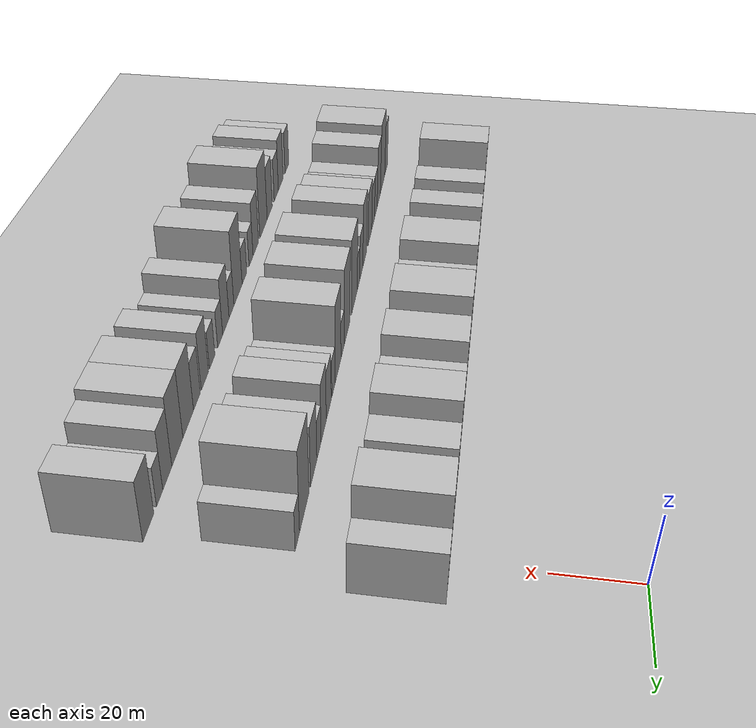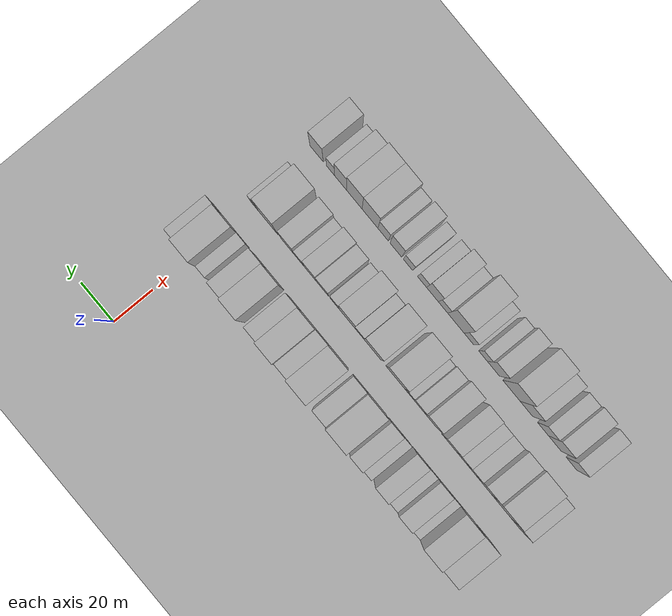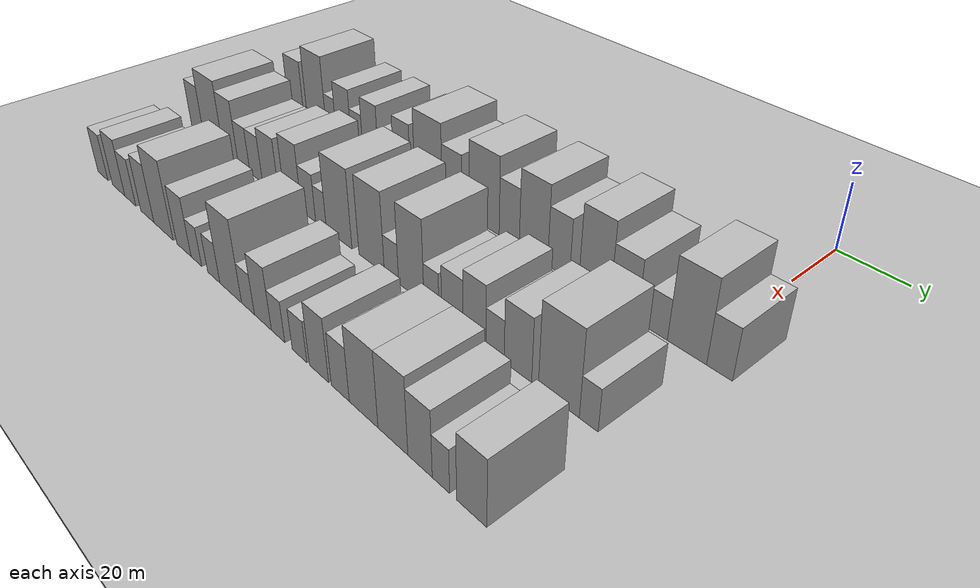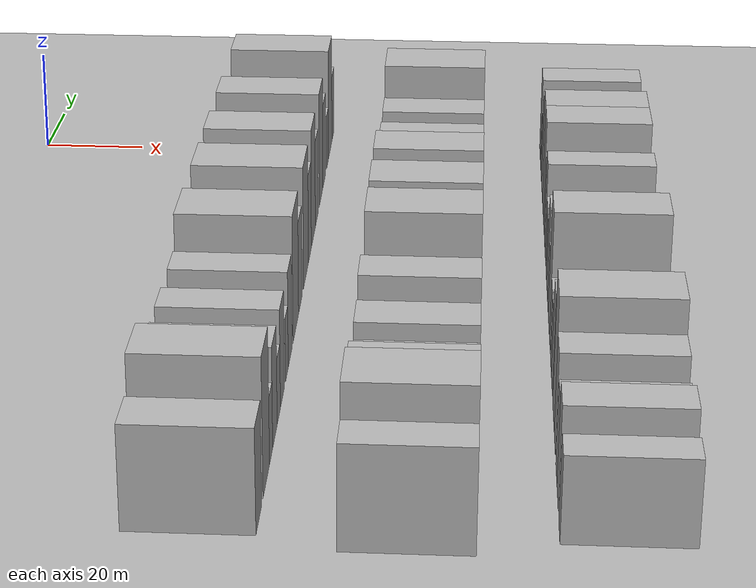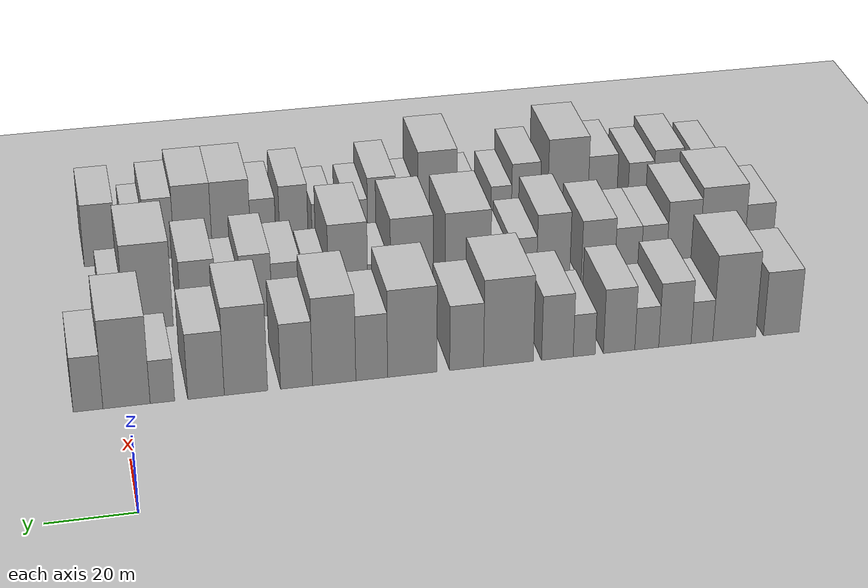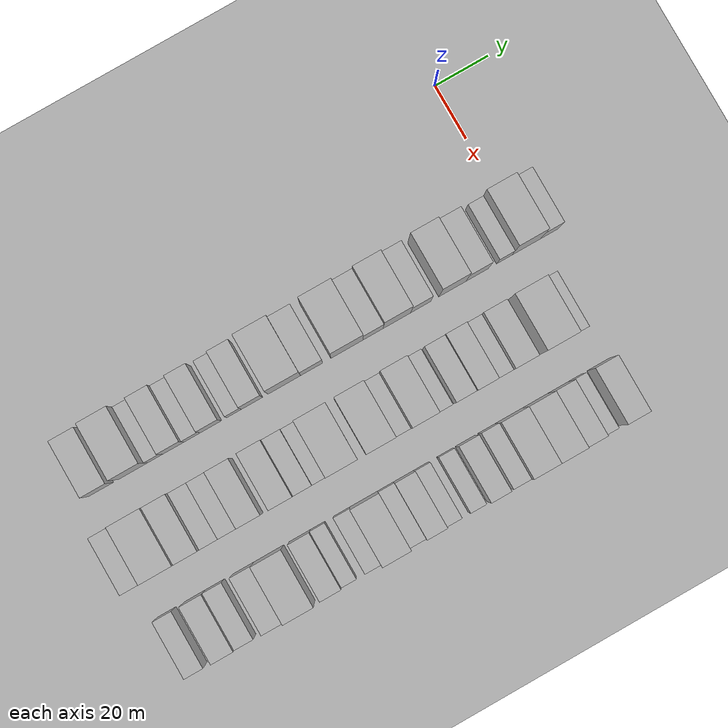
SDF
<sdf version="1.6">
 <world name="default">
  <include><name>ground_plane_1</name><uri>model://HANNAS_ground_plane</uri></include>
  <include>
   <name>ground_plane_2</name>
   <uri>model://HANNAS_ground_plane</uri>
   <pose>100 0 0  0 0 0</pose>
  </include>
  <model name="building_21">
   <static>1</static>
   <pose>50.0000 -156.8758 0 0.000000 0.000000 0.000000</pose>
   <link name="link">
    <pose>0 0 9.00 0 0 0</pose>
    <collision name="collision"><geometry><box><size>20.0000 8.9044 18.0000</size></box></geometry></collision>
    <visual name="visual">
     <cast_shadows>0</cast_shadows>
     <geometry><box><size>20.0000 8.9044 18.0000</size></box></geometry>
     <material>
      <script>
       <uri>model://HANNAS_wall/materials/scripts</uri>
       <uri>model://HANNAS_wall/materials/textures</uri>
       <name>vrc/HANNAS_wall</name>
      </script>
     </material>
    </visual>
   </link>
  </model>
  <model name="building_22">
   <static>1</static>
   <pose>50.0000 -145.1113 0 0.000000 0.000000 0.000000</pose>
   <link name="link">
    <pose>0 0 12.00 0 0 0</pose>
    <collision name="collision"><geometry><box><size>20.0000 10.6248 24.0000</size></box></geometry></collision>
    <visual name="visual">
     <cast_shadows>0</cast_shadows>
     <geometry><box><size>20.0000 10.6248 24.0000</size></box></geometry>
     <material>
      <script>
       <uri>model://HANNAS_wall/materials/scripts</uri>
       <uri>model://HANNAS_wall/materials/textures</uri>
       <name>vrc/HANNAS_wall</name>
      </script>
     </material>
    </visual>
   </link>
  </model>
  <model name="building_23">
   <static>1</static>
   <pose>50.0000 -137.1146 0 0.000000 0.000000 0.000000</pose>
   <link name="link">
    <pose>0 0 6.00 0 0 0</pose>
    <collision name="collision"><geometry><box><size>20.0000 5.3684 12.0000</size></box></geometry></collision>
    <visual name="visual">
     <cast_shadows>0</cast_shadows>
     <geometry><box><size>20.0000 5.3684 12.0000</size></box></geometry>
     <material>
      <script>
       <uri>model://HANNAS_wall/materials/scripts</uri>
       <uri>model://HANNAS_wall/materials/textures</uri>
       <name>vrc/HANNAS_wall</name>
      </script>
     </material>
    </visual>
   </link>
  </model>
  <model name="building_24">
   <static>1</static>
   <pose>50.0000 -130.4497 0 0.000000 0.000000 0.000000</pose>
   <link name="link">
    <pose>0 0 9.00 0 0 0</pose>
    <collision name="collision"><geometry><box><size>20.0000 7.9614 18.0000</size></box></geometry></collision>
    <visual name="visual">
     <cast_shadows>0</cast_shadows>
     <geometry><box><size>20.0000 7.9614 18.0000</size></box></geometry>
     <material>
      <script>
       <uri>model://HANNAS_wall/materials/scripts</uri>
       <uri>model://HANNAS_wall/materials/textures</uri>
       <name>vrc/HANNAS_wall</name>
      </script>
     </material>
    </visual>
   </link>
  </model>
  <model name="building_25">
   <static>1</static>
   <pose>50.0000 -123.5335 0 0.000000 0.000000 0.000000</pose>
   <link name="link">
    <pose>0 0 6.00 0 0 0</pose>
    <collision name="collision"><geometry><box><size>20.0000 5.8710 12.0000</size></box></geometry></collision>
    <visual name="visual">
     <cast_shadows>0</cast_shadows>
     <geometry><box><size>20.0000 5.8710 12.0000</size></box></geometry>
     <material>
      <script>
       <uri>model://HANNAS_wall/materials/scripts</uri>
       <uri>model://HANNAS_wall/materials/textures</uri>
       <name>vrc/HANNAS_wall</name>
      </script>
     </material>
    </visual>
   </link>
  </model>
  <model name="building_26">
   <static>1</static>
   <pose>50.0000 -116.7605 0 0.000000 0.000000 0.000000</pose>
   <link name="link">
    <pose>0 0 9.00 0 0 0</pose>
    <collision name="collision"><geometry><box><size>20.0000 7.6751 18.0000</size></box></geometry></collision>
    <visual name="visual">
     <cast_shadows>0</cast_shadows>
     <geometry><box><size>20.0000 7.6751 18.0000</size></box></geometry>
     <material>
      <script>
       <uri>model://HANNAS_wall/materials/scripts</uri>
       <uri>model://HANNAS_wall/materials/textures</uri>
       <name>vrc/HANNAS_wall</name>
      </script>
     </material>
    </visual>
   </link>
  </model>
  <model name="building_27">
   <static>1</static>
   <pose>50.0000 -108.2501 0 0.000000 0.000000 0.000000</pose>
   <link name="link">
    <pose>0 0 6.00 0 0 0</pose>
    <collision name="collision"><geometry><box><size>20.0000 5.3455 12.0000</size></box></geometry></collision>
    <visual name="visual">
     <cast_shadows>0</cast_shadows>
     <geometry><box><size>20.0000 5.3455 12.0000</size></box></geometry>
     <material>
      <script>
       <uri>model://HANNAS_wall/materials/scripts</uri>
       <uri>model://HANNAS_wall/materials/textures</uri>
       <name>vrc/HANNAS_wall</name>
      </script>
     </material>
    </visual>
   </link>
  </model>
  <model name="building_28">
   <static>1</static>
   <pose>50.0000 -101.7485 0 0.000000 0.000000 0.000000</pose>
   <link name="link">
    <pose>0 0 9.00 0 0 0</pose>
    <collision name="collision"><geometry><box><size>20.0000 7.6578 18.0000</size></box></geometry></collision>
    <visual name="visual">
     <cast_shadows>0</cast_shadows>
     <geometry><box><size>20.0000 7.6578 18.0000</size></box></geometry>
     <material>
      <script>
       <uri>model://HANNAS_wall/materials/scripts</uri>
       <uri>model://HANNAS_wall/materials/textures</uri>
       <name>vrc/HANNAS_wall</name>
      </script>
     </material>
    </visual>
   </link>
  </model>
  <model name="building_29">
   <static>1</static>
   <pose>50.0000 -89.9516 0 0.000000 0.000000 0.000000</pose>
   <link name="link">
    <pose>0 0 12.00 0 0 0</pose>
    <collision name="collision"><geometry><box><size>20.0000 11.9362 24.0000</size></box></geometry></collision>
    <visual name="visual">
     <cast_shadows>0</cast_shadows>
     <geometry><box><size>20.0000 11.9362 24.0000</size></box></geometry>
     <material>
      <script>
       <uri>model://HANNAS_wall/materials/scripts</uri>
       <uri>model://HANNAS_wall/materials/textures</uri>
       <name>vrc/HANNAS_wall</name>
      </script>
     </material>
    </visual>
   </link>
  </model>
  <model name="building_30">
   <static>1</static>
   <pose>50.0000 -79.9415 0 0.000000 0.000000 0.000000</pose>
   <link name="link">
    <pose>0 0 9.00 0 0 0</pose>
    <collision name="collision"><geometry><box><size>20.0000 8.0840 18.0000</size></box></geometry></collision>
    <visual name="visual">
     <cast_shadows>0</cast_shadows>
     <geometry><box><size>20.0000 8.0840 18.0000</size></box></geometry>
     <material>
      <script>
       <uri>model://HANNAS_wall/materials/scripts</uri>
       <uri>model://HANNAS_wall/materials/textures</uri>
       <name>vrc/HANNAS_wall</name>
      </script>
     </material>
    </visual>
   </link>
  </model>
  <model name="building_31">
   <static>1</static>
   <pose>50.0000 -67.0458 0 0.000000 0.000000 0.000000</pose>
   <link name="link">
    <pose>0 0 12.00 0 0 0</pose>
    <collision name="collision"><geometry><box><size>20.0000 11.7074 24.0000</size></box></geometry></collision>
    <visual name="visual">
     <cast_shadows>0</cast_shadows>
     <geometry><box><size>20.0000 11.7074 24.0000</size></box></geometry>
     <material>
      <script>
       <uri>model://HANNAS_wall/materials/scripts</uri>
       <uri>model://HANNAS_wall/materials/textures</uri>
       <name>vrc/HANNAS_wall</name>
      </script>
     </material>
    </visual>
   </link>
  </model>
  <model name="building_32">
   <static>1</static>
   <pose>50.0000 -57.4610 0 0.000000 0.000000 0.000000</pose>
   <link name="link">
    <pose>0 0 9.00 0 0 0</pose>
    <collision name="collision"><geometry><box><size>20.0000 7.4623 18.0000</size></box></geometry></collision>
    <visual name="visual">
     <cast_shadows>0</cast_shadows>
     <geometry><box><size>20.0000 7.4623 18.0000</size></box></geometry>
     <material>
      <script>
       <uri>model://HANNAS_wall/materials/scripts</uri>
       <uri>model://HANNAS_wall/materials/textures</uri>
       <name>vrc/HANNAS_wall</name>
      </script>
     </material>
    </visual>
   </link>
  </model>
  <model name="building_33">
   <static>1</static>
   <pose>50.0000 -48.6677 0 0.000000 0.000000 0.000000</pose>
   <link name="link">
    <pose>0 0 12.00 0 0 0</pose>
    <collision name="collision"><geometry><box><size>20.0000 10.1242 24.0000</size></box></geometry></collision>
    <visual name="visual">
     <cast_shadows>0</cast_shadows>
     <geometry><box><size>20.0000 10.1242 24.0000</size></box></geometry>
     <material>
      <script>
       <uri>model://HANNAS_wall/materials/scripts</uri>
       <uri>model://HANNAS_wall/materials/textures</uri>
       <name>vrc/HANNAS_wall</name>
      </script>
     </material>
    </visual>
   </link>
  </model>
  <model name="building_34">
   <static>1</static>
   <pose>50.0000 -39.8887 0 0.000000 0.000000 0.000000</pose>
   <link name="link">
    <pose>0 0 9.00 0 0 0</pose>
    <collision name="collision"><geometry><box><size>20.0000 7.4339 18.0000</size></box></geometry></collision>
    <visual name="visual">
     <cast_shadows>0</cast_shadows>
     <geometry><box><size>20.0000 7.4339 18.0000</size></box></geometry>
     <material>
      <script>
       <uri>model://HANNAS_wall/materials/scripts</uri>
       <uri>model://HANNAS_wall/materials/textures</uri>
       <name>vrc/HANNAS_wall</name>
      </script>
     </material>
    </visual>
   </link>
  </model>
  <model name="building_35">
   <static>1</static>
   <pose>50.0000 -28.1700 0 0.000000 0.000000 0.000000</pose>
   <link name="link">
    <pose>0 0 12.00 0 0 0</pose>
    <collision name="collision"><geometry><box><size>20.0000 10.0035 24.0000</size></box></geometry></collision>
    <visual name="visual">
     <cast_shadows>0</cast_shadows>
     <geometry><box><size>20.0000 10.0035 24.0000</size></box></geometry>
     <material>
      <script>
       <uri>model://HANNAS_wall/materials/scripts</uri>
       <uri>model://HANNAS_wall/materials/textures</uri>
       <name>vrc/HANNAS_wall</name>
      </script>
     </material>
    </visual>
   </link>
  </model>
  <model name="building_36">
   <static>1</static>
   <pose>50.0000 -18.9772 0 0.000000 0.000000 0.000000</pose>
   <link name="link">
    <pose>0 0 9.00 0 0 0</pose>
    <collision name="collision"><geometry><box><size>20.0000 8.3821 18.0000</size></box></geometry></collision>
    <visual name="visual">
     <cast_shadows>0</cast_shadows>
     <geometry><box><size>20.0000 8.3821 18.0000</size></box></geometry>
     <material>
      <script>
       <uri>model://HANNAS_wall/materials/scripts</uri>
       <uri>model://HANNAS_wall/materials/textures</uri>
       <name>vrc/HANNAS_wall</name>
      </script>
     </material>
    </visual>
   </link>
  </model>
  <model name="building_37">
   <static>1</static>
   <pose>50.0000 -8.9905 0 0.000000 0.000000 0.000000</pose>
   <link name="link">
    <pose>0 0 6.00 0 0 0</pose>
    <collision name="collision"><geometry><box><size>20.0000 5.5913 12.0000</size></box></geometry></collision>
    <visual name="visual">
     <cast_shadows>0</cast_shadows>
     <geometry><box><size>20.0000 5.5913 12.0000</size></box></geometry>
     <material>
      <script>
       <uri>model://HANNAS_wall/materials/scripts</uri>
       <uri>model://HANNAS_wall/materials/textures</uri>
       <name>vrc/HANNAS_wall</name>
      </script>
     </material>
    </visual>
   </link>
  </model>
  <model name="building_38">
   <static>1</static>
   <pose>50.0000 -0.8395 0 0.000000 0.000000 0.000000</pose>
   <link name="link">
    <pose>0 0 12.00 0 0 0</pose>
    <collision name="collision"><geometry><box><size>20.0000 10.7109 24.0000</size></box></geometry></collision>
    <visual name="visual">
     <cast_shadows>0</cast_shadows>
     <geometry><box><size>20.0000 10.7109 24.0000</size></box></geometry>
     <material>
      <script>
       <uri>model://HANNAS_wall/materials/scripts</uri>
       <uri>model://HANNAS_wall/materials/textures</uri>
       <name>vrc/HANNAS_wall</name>
      </script>
     </material>
    </visual>
   </link>
  </model>
  <model name="building_39">
   <static>1</static>
   <pose>50.0000 7.8740 0 0.000000 0.000000 0.000000</pose>
   <link name="link">
    <pose>0 0 7.50 0 0 0</pose>
    <collision name="collision"><geometry><box><size>20.0000 6.7161 15.0000</size></box></geometry></collision>
    <visual name="visual">
     <cast_shadows>0</cast_shadows>
     <geometry><box><size>20.0000 6.7161 15.0000</size></box></geometry>
     <material>
      <script>
       <uri>model://HANNAS_wall/materials/scripts</uri>
       <uri>model://HANNAS_wall/materials/textures</uri>
       <name>vrc/HANNAS_wall</name>
      </script>
     </material>
    </visual>
   </link>
  </model>
  <model name="building_97">
   <static>1</static>
   <pose>82.0000 -161.4973 0 0.000000 0.000000 0.000000</pose>
   <link name="link">
    <pose>0 0 9.00 0 0 0</pose>
    <collision name="collision"><geometry><box><size>20.0000 7.3766 18.0000</size></box></geometry></collision>
    <visual name="visual">
     <cast_shadows>0</cast_shadows>
     <geometry><box><size>20.0000 7.3766 18.0000</size></box></geometry>
     <material>
      <script>
       <uri>model://HANNAS_wall/materials/scripts</uri>
       <uri>model://HANNAS_wall/materials/textures</uri>
       <name>vrc/HANNAS_wall</name>
      </script>
     </material>
    </visual>
   </link>
  </model>
  <model name="building_98">
   <static>1</static>
   <pose>82.0000 -151.9665 0 0.000000 0.000000 0.000000</pose>
   <link name="link">
    <pose>0 0 12.00 0 0 0</pose>
    <collision name="collision"><geometry><box><size>20.0000 11.6851 24.0000</size></box></geometry></collision>
    <visual name="visual">
     <cast_shadows>0</cast_shadows>
     <geometry><box><size>20.0000 11.6851 24.0000</size></box></geometry>
     <material>
      <script>
       <uri>model://HANNAS_wall/materials/scripts</uri>
       <uri>model://HANNAS_wall/materials/textures</uri>
       <name>vrc/HANNAS_wall</name>
      </script>
     </material>
    </visual>
   </link>
  </model>
  <model name="building_99">
   <static>1</static>
   <pose>82.0000 -141.8906 0 0.000000 0.000000 0.000000</pose>
   <link name="link">
    <pose>0 0 10.50 0 0 0</pose>
    <collision name="collision"><geometry><box><size>20.0000 8.4665 21.0000</size></box></geometry></collision>
    <visual name="visual">
     <cast_shadows>0</cast_shadows>
     <geometry><box><size>20.0000 8.4665 21.0000</size></box></geometry>
     <material>
      <script>
       <uri>model://HANNAS_wall/materials/scripts</uri>
       <uri>model://HANNAS_wall/materials/textures</uri>
       <name>vrc/HANNAS_wall</name>
      </script>
     </material>
    </visual>
   </link>
  </model>
  <model name="building_100">
   <static>1</static>
   <pose>82.0000 -134.3964 0 0.000000 0.000000 0.000000</pose>
   <link name="link">
    <pose>0 0 7.50 0 0 0</pose>
    <collision name="collision"><geometry><box><size>20.0000 6.5221 15.0000</size></box></geometry></collision>
    <visual name="visual">
     <cast_shadows>0</cast_shadows>
     <geometry><box><size>20.0000 6.5221 15.0000</size></box></geometry>
     <material>
      <script>
       <uri>model://HANNAS_wall/materials/scripts</uri>
       <uri>model://HANNAS_wall/materials/textures</uri>
       <name>vrc/HANNAS_wall</name>
      </script>
     </material>
    </visual>
   </link>
  </model>
  <model name="building_101">
   <static>1</static>
   <pose>82.0000 -127.7852 0 0.000000 0.000000 0.000000</pose>
   <link name="link">
    <pose>0 0 7.50 0 0 0</pose>
    <collision name="collision"><geometry><box><size>20.0000 6.7002 15.0000</size></box></geometry></collision>
    <visual name="visual">
     <cast_shadows>0</cast_shadows>
     <geometry><box><size>20.0000 6.7002 15.0000</size></box></geometry>
     <material>
      <script>
       <uri>model://HANNAS_wall/materials/scripts</uri>
       <uri>model://HANNAS_wall/materials/textures</uri>
       <name>vrc/HANNAS_wall</name>
      </script>
     </material>
    </visual>
   </link>
  </model>
  <model name="building_102">
   <static>1</static>
   <pose>82.0000 -120.1559 0 0.000000 0.000000 0.000000</pose>
   <link name="link">
    <pose>0 0 9.00 0 0 0</pose>
    <collision name="collision"><geometry><box><size>20.0000 8.5584 18.0000</size></box></geometry></collision>
    <visual name="visual">
     <cast_shadows>0</cast_shadows>
     <geometry><box><size>20.0000 8.5584 18.0000</size></box></geometry>
     <material>
      <script>
       <uri>model://HANNAS_wall/materials/scripts</uri>
       <uri>model://HANNAS_wall/materials/textures</uri>
       <name>vrc/HANNAS_wall</name>
      </script>
     </material>
    </visual>
   </link>
  </model>
  <model name="building_103">
   <static>1</static>
   <pose>82.0000 -108.6633 0 0.000000 0.000000 0.000000</pose>
   <link name="link">
    <pose>0 0 10.50 0 0 0</pose>
    <collision name="collision"><geometry><box><size>20.0000 8.4267 21.0000</size></box></geometry></collision>
    <visual name="visual">
     <cast_shadows>0</cast_shadows>
     <geometry><box><size>20.0000 8.4267 21.0000</size></box></geometry>
     <material>
      <script>
       <uri>model://HANNAS_wall/materials/scripts</uri>
       <uri>model://HANNAS_wall/materials/textures</uri>
       <name>vrc/HANNAS_wall</name>
      </script>
     </material>
    </visual>
   </link>
  </model>
  <model name="building_104">
   <static>1</static>
   <pose>82.0000 -101.1139 0 0.000000 0.000000 0.000000</pose>
   <link name="link">
    <pose>0 0 7.50 0 0 0</pose>
    <collision name="collision"><geometry><box><size>20.0000 6.6721 15.0000</size></box></geometry></collision>
    <visual name="visual">
     <cast_shadows>0</cast_shadows>
     <geometry><box><size>20.0000 6.6721 15.0000</size></box></geometry>
     <material>
      <script>
       <uri>model://HANNAS_wall/materials/scripts</uri>
       <uri>model://HANNAS_wall/materials/textures</uri>
       <name>vrc/HANNAS_wall</name>
      </script>
     </material>
    </visual>
   </link>
  </model>
  <model name="building_105">
   <static>1</static>
   <pose>82.0000 -95.2952 0 0.000000 0.000000 0.000000</pose>
   <link name="link">
    <pose>0 0 6.00 0 0 0</pose>
    <collision name="collision"><geometry><box><size>20.0000 4.9654 12.0000</size></box></geometry></collision>
    <visual name="visual">
     <cast_shadows>0</cast_shadows>
     <geometry><box><size>20.0000 4.9654 12.0000</size></box></geometry>
     <material>
      <script>
       <uri>model://HANNAS_wall/materials/scripts</uri>
       <uri>model://HANNAS_wall/materials/textures</uri>
       <name>vrc/HANNAS_wall</name>
      </script>
     </material>
    </visual>
   </link>
  </model>
  <model name="building_106">
   <static>1</static>
   <pose>82.0000 -87.1446 0 0.000000 0.000000 0.000000</pose>
   <link name="link">
    <pose>0 0 12.00 0 0 0</pose>
    <collision name="collision"><geometry><box><size>20.0000 11.3358 24.0000</size></box></geometry></collision>
    <visual name="visual">
     <cast_shadows>0</cast_shadows>
     <geometry><box><size>20.0000 11.3358 24.0000</size></box></geometry>
     <material>
      <script>
       <uri>model://HANNAS_wall/materials/scripts</uri>
       <uri>model://HANNAS_wall/materials/textures</uri>
       <name>vrc/HANNAS_wall</name>
      </script>
     </material>
    </visual>
   </link>
  </model>
  <model name="building_107">
   <static>1</static>
   <pose>82.0000 -73.1992 0 0.000000 0.000000 0.000000</pose>
   <link name="link">
    <pose>0 0 12.00 0 0 0</pose>
    <collision name="collision"><geometry><box><size>20.0000 10.5549 24.0000</size></box></geometry></collision>
    <visual name="visual">
     <cast_shadows>0</cast_shadows>
     <geometry><box><size>20.0000 10.5549 24.0000</size></box></geometry>
     <material>
      <script>
       <uri>model://HANNAS_wall/materials/scripts</uri>
       <uri>model://HANNAS_wall/materials/textures</uri>
       <name>vrc/HANNAS_wall</name>
      </script>
     </material>
    </visual>
   </link>
  </model>
  <model name="building_108">
   <static>1</static>
   <pose>82.0000 -65.0981 0 0.000000 0.000000 0.000000</pose>
   <link name="link">
    <pose>0 0 6.00 0 0 0</pose>
    <collision name="collision"><geometry><box><size>20.0000 5.6474 12.0000</size></box></geometry></collision>
    <visual name="visual">
     <cast_shadows>0</cast_shadows>
     <geometry><box><size>20.0000 5.6474 12.0000</size></box></geometry>
     <material>
      <script>
       <uri>model://HANNAS_wall/materials/scripts</uri>
       <uri>model://HANNAS_wall/materials/textures</uri>
       <name>vrc/HANNAS_wall</name>
      </script>
     </material>
    </visual>
   </link>
  </model>
  <model name="building_109">
   <static>1</static>
   <pose>82.0000 -57.4514 0 0.000000 0.000000 0.000000</pose>
   <link name="link">
    <pose>0 0 12.00 0 0 0</pose>
    <collision name="collision"><geometry><box><size>20.0000 9.6460 24.0000</size></box></geometry></collision>
    <visual name="visual">
     <cast_shadows>0</cast_shadows>
     <geometry><box><size>20.0000 9.6460 24.0000</size></box></geometry>
     <material>
      <script>
       <uri>model://HANNAS_wall/materials/scripts</uri>
       <uri>model://HANNAS_wall/materials/textures</uri>
       <name>vrc/HANNAS_wall</name>
      </script>
     </material>
    </visual>
   </link>
  </model>
  <model name="building_110">
   <static>1</static>
   <pose>82.0000 -49.8948 0 0.000000 0.000000 0.000000</pose>
   <link name="link">
    <pose>0 0 6.00 0 0 0</pose>
    <collision name="collision"><geometry><box><size>20.0000 5.4674 12.0000</size></box></geometry></collision>
    <visual name="visual">
     <cast_shadows>0</cast_shadows>
     <geometry><box><size>20.0000 5.4674 12.0000</size></box></geometry>
     <material>
      <script>
       <uri>model://HANNAS_wall/materials/scripts</uri>
       <uri>model://HANNAS_wall/materials/textures</uri>
       <name>vrc/HANNAS_wall</name>
      </script>
     </material>
    </visual>
   </link>
  </model>
  <model name="building_111">
   <static>1</static>
   <pose>82.0000 -42.4465 0 0.000000 0.000000 0.000000</pose>
   <link name="link">
    <pose>0 0 7.50 0 0 0</pose>
    <collision name="collision"><geometry><box><size>20.0000 7.4293 15.0000</size></box></geometry></collision>
    <visual name="visual">
     <cast_shadows>0</cast_shadows>
     <geometry><box><size>20.0000 7.4293 15.0000</size></box></geometry>
     <material>
      <script>
       <uri>model://HANNAS_wall/materials/scripts</uri>
       <uri>model://HANNAS_wall/materials/textures</uri>
       <name>vrc/HANNAS_wall</name>
      </script>
     </material>
    </visual>
   </link>
  </model>
  <model name="building_112">
   <static>1</static>
   <pose>82.0000 -34.9271 0 0.000000 0.000000 0.000000</pose>
   <link name="link">
    <pose>0 0 9.00 0 0 0</pose>
    <collision name="collision"><geometry><box><size>20.0000 7.6094 18.0000</size></box></geometry></collision>
    <visual name="visual">
     <cast_shadows>0</cast_shadows>
     <geometry><box><size>20.0000 7.6094 18.0000</size></box></geometry>
     <material>
      <script>
       <uri>model://HANNAS_wall/materials/scripts</uri>
       <uri>model://HANNAS_wall/materials/textures</uri>
       <name>vrc/HANNAS_wall</name>
      </script>
     </material>
    </visual>
   </link>
  </model>
  <model name="building_113">
   <static>1</static>
   <pose>82.0000 -28.1898 0 0.000000 0.000000 0.000000</pose>
   <link name="link">
    <pose>0 0 6.00 0 0 0</pose>
    <collision name="collision"><geometry><box><size>20.0000 5.8652 12.0000</size></box></geometry></collision>
    <visual name="visual">
     <cast_shadows>0</cast_shadows>
     <geometry><box><size>20.0000 5.8652 12.0000</size></box></geometry>
     <material>
      <script>
       <uri>model://HANNAS_wall/materials/scripts</uri>
       <uri>model://HANNAS_wall/materials/textures</uri>
       <name>vrc/HANNAS_wall</name>
      </script>
     </material>
    </visual>
   </link>
  </model>
  <model name="building_114">
   <static>1</static>
   <pose>82.0000 -21.0156 0 0.000000 0.000000 0.000000</pose>
   <link name="link">
    <pose>0 0 9.00 0 0 0</pose>
    <collision name="collision"><geometry><box><size>20.0000 8.4830 18.0000</size></box></geometry></collision>
    <visual name="visual">
     <cast_shadows>0</cast_shadows>
     <geometry><box><size>20.0000 8.4830 18.0000</size></box></geometry>
     <material>
      <script>
       <uri>model://HANNAS_wall/materials/scripts</uri>
       <uri>model://HANNAS_wall/materials/textures</uri>
       <name>vrc/HANNAS_wall</name>
      </script>
     </material>
    </visual>
   </link>
  </model>
  <model name="building_115">
   <static>1</static>
   <pose>82.0000 -8.9152 0 0.000000 0.000000 0.000000</pose>
   <link name="link">
    <pose>0 0 12.00 0 0 0</pose>
    <collision name="collision"><geometry><box><size>20.0000 11.7179 24.0000</size></box></geometry></collision>
    <visual name="visual">
     <cast_shadows>0</cast_shadows>
     <geometry><box><size>20.0000 11.7179 24.0000</size></box></geometry>
     <material>
      <script>
       <uri>model://HANNAS_wall/materials/scripts</uri>
       <uri>model://HANNAS_wall/materials/textures</uri>
       <name>vrc/HANNAS_wall</name>
      </script>
     </material>
    </visual>
   </link>
  </model>
  <model name="building_116">
   <static>1</static>
   <pose>82.0000 -0.5017 0 0.000000 0.000000 0.000000</pose>
   <link name="link">
    <pose>0 0 6.00 0 0 0</pose>
    <collision name="collision"><geometry><box><size>20.0000 5.1089 12.0000</size></box></geometry></collision>
    <visual name="visual">
     <cast_shadows>0</cast_shadows>
     <geometry><box><size>20.0000 5.1089 12.0000</size></box></geometry>
     <material>
      <script>
       <uri>model://HANNAS_wall/materials/scripts</uri>
       <uri>model://HANNAS_wall/materials/textures</uri>
       <name>vrc/HANNAS_wall</name>
      </script>
     </material>
    </visual>
   </link>
  </model>
  <model name="building_178">
   <static>1</static>
   <pose>114.0000 -157.7053 0 0.000000 0.000000 0.000000</pose>
   <link name="link">
    <pose>0 0 7.50 0 0 0</pose>
    <collision name="collision"><geometry><box><size>20.0000 6.7408 15.0000</size></box></geometry></collision>
    <visual name="visual">
     <cast_shadows>0</cast_shadows>
     <geometry><box><size>20.0000 6.7408 15.0000</size></box></geometry>
     <material>
      <script>
       <uri>model://HANNAS_wall/materials/scripts</uri>
       <uri>model://HANNAS_wall/materials/textures</uri>
       <name>vrc/HANNAS_wall</name>
      </script>
     </material>
    </visual>
   </link>
  </model>
  <model name="building_179">
   <static>1</static>
   <pose>114.0000 -147.3920 0 0.000000 0.000000 0.000000</pose>
   <link name="link">
    <pose>0 0 9.00 0 0 0</pose>
    <collision name="collision"><geometry><box><size>20.0000 7.8858 18.0000</size></box></geometry></collision>
    <visual name="visual">
     <cast_shadows>0</cast_shadows>
     <geometry><box><size>20.0000 7.8858 18.0000</size></box></geometry>
     <material>
      <script>
       <uri>model://HANNAS_wall/materials/scripts</uri>
       <uri>model://HANNAS_wall/materials/textures</uri>
       <name>vrc/HANNAS_wall</name>
      </script>
     </material>
    </visual>
   </link>
  </model>
  <model name="building_180">
   <static>1</static>
   <pose>114.0000 -140.0560 0 0.000000 0.000000 0.000000</pose>
   <link name="link">
    <pose>0 0 7.50 0 0 0</pose>
    <collision name="collision"><geometry><box><size>20.0000 6.7863 15.0000</size></box></geometry></collision>
    <visual name="visual">
     <cast_shadows>0</cast_shadows>
     <geometry><box><size>20.0000 6.7863 15.0000</size></box></geometry>
     <material>
      <script>
       <uri>model://HANNAS_wall/materials/scripts</uri>
       <uri>model://HANNAS_wall/materials/textures</uri>
       <name>vrc/HANNAS_wall</name>
      </script>
     </material>
    </visual>
   </link>
  </model>
  <model name="building_181">
   <static>1</static>
   <pose>114.0000 -129.7866 0 0.000000 0.000000 0.000000</pose>
   <link name="link">
    <pose>0 0 9.00 0 0 0</pose>
    <collision name="collision"><geometry><box><size>20.0000 7.7526 18.0000</size></box></geometry></collision>
    <visual name="visual">
     <cast_shadows>0</cast_shadows>
     <geometry><box><size>20.0000 7.7526 18.0000</size></box></geometry>
     <material>
      <script>
       <uri>model://HANNAS_wall/materials/scripts</uri>
       <uri>model://HANNAS_wall/materials/textures</uri>
       <name>vrc/HANNAS_wall</name>
      </script>
     </material>
    </visual>
   </link>
  </model>
  <model name="building_182">
   <static>1</static>
   <pose>114.0000 -120.5382 0 0.000000 0.000000 0.000000</pose>
   <link name="link">
    <pose>0 0 12.00 0 0 0</pose>
    <collision name="collision"><geometry><box><size>20.0000 10.7442 24.0000</size></box></geometry></collision>
    <visual name="visual">
     <cast_shadows>0</cast_shadows>
     <geometry><box><size>20.0000 10.7442 24.0000</size></box></geometry>
     <material>
      <script>
       <uri>model://HANNAS_wall/materials/scripts</uri>
       <uri>model://HANNAS_wall/materials/textures</uri>
       <name>vrc/HANNAS_wall</name>
      </script>
     </material>
    </visual>
   </link>
  </model>
  <model name="building_183">
   <static>1</static>
   <pose>114.0000 -109.3655 0 0.000000 0.000000 0.000000</pose>
   <link name="link">
    <pose>0 0 9.00 0 0 0</pose>
    <collision name="collision"><geometry><box><size>20.0000 7.6011 18.0000</size></box></geometry></collision>
    <visual name="visual">
     <cast_shadows>0</cast_shadows>
     <geometry><box><size>20.0000 7.6011 18.0000</size></box></geometry>
     <material>
      <script>
       <uri>model://HANNAS_wall/materials/scripts</uri>
       <uri>model://HANNAS_wall/materials/textures</uri>
       <name>vrc/HANNAS_wall</name>
      </script>
     </material>
    </visual>
   </link>
  </model>
  <model name="building_184">
   <static>1</static>
   <pose>114.0000 -102.8526 0 0.000000 0.000000 0.000000</pose>
   <link name="link">
    <pose>0 0 6.00 0 0 0</pose>
    <collision name="collision"><geometry><box><size>20.0000 5.4247 12.0000</size></box></geometry></collision>
    <visual name="visual">
     <cast_shadows>0</cast_shadows>
     <geometry><box><size>20.0000 5.4247 12.0000</size></box></geometry>
     <material>
      <script>
       <uri>model://HANNAS_wall/materials/scripts</uri>
       <uri>model://HANNAS_wall/materials/textures</uri>
       <name>vrc/HANNAS_wall</name>
      </script>
     </material>
    </visual>
   </link>
  </model>
  <model name="building_185">
   <static>1</static>
   <pose>114.0000 -94.1536 0 0.000000 0.000000 0.000000</pose>
   <link name="link">
    <pose>0 0 6.00 0 0 0</pose>
    <collision name="collision"><geometry><box><size>20.0000 5.9734 12.0000</size></box></geometry></collision>
    <visual name="visual">
     <cast_shadows>0</cast_shadows>
     <geometry><box><size>20.0000 5.9734 12.0000</size></box></geometry>
     <material>
      <script>
       <uri>model://HANNAS_wall/materials/scripts</uri>
       <uri>model://HANNAS_wall/materials/textures</uri>
       <name>vrc/HANNAS_wall</name>
      </script>
     </material>
    </visual>
   </link>
  </model>
  <model name="building_186">
   <static>1</static>
   <pose>114.0000 -86.0835 0 0.000000 0.000000 0.000000</pose>
   <link name="link">
    <pose>0 0 12.00 0 0 0</pose>
    <collision name="collision"><geometry><box><size>20.0000 10.1667 24.0000</size></box></geometry></collision>
    <visual name="visual">
     <cast_shadows>0</cast_shadows>
     <geometry><box><size>20.0000 10.1667 24.0000</size></box></geometry>
     <material>
      <script>
       <uri>model://HANNAS_wall/materials/scripts</uri>
       <uri>model://HANNAS_wall/materials/textures</uri>
       <name>vrc/HANNAS_wall</name>
      </script>
     </material>
    </visual>
   </link>
  </model>
  <model name="building_187">
   <static>1</static>
   <pose>114.0000 -78.1139 0 0.000000 0.000000 0.000000</pose>
   <link name="link">
    <pose>0 0 6.00 0 0 0</pose>
    <collision name="collision"><geometry><box><size>20.0000 5.7725 12.0000</size></box></geometry></collision>
    <visual name="visual">
     <cast_shadows>0</cast_shadows>
     <geometry><box><size>20.0000 5.7725 12.0000</size></box></geometry>
     <material>
      <script>
       <uri>model://HANNAS_wall/materials/scripts</uri>
       <uri>model://HANNAS_wall/materials/textures</uri>
       <name>vrc/HANNAS_wall</name>
      </script>
     </material>
    </visual>
   </link>
  </model>
  <model name="building_188">
   <static>1</static>
   <pose>114.0000 -71.5613 0 0.000000 0.000000 0.000000</pose>
   <link name="link">
    <pose>0 0 9.00 0 0 0</pose>
    <collision name="collision"><geometry><box><size>20.0000 7.3327 18.0000</size></box></geometry></collision>
    <visual name="visual">
     <cast_shadows>0</cast_shadows>
     <geometry><box><size>20.0000 7.3327 18.0000</size></box></geometry>
     <material>
      <script>
       <uri>model://HANNAS_wall/materials/scripts</uri>
       <uri>model://HANNAS_wall/materials/textures</uri>
       <name>vrc/HANNAS_wall</name>
      </script>
     </material>
    </visual>
   </link>
  </model>
  <model name="building_189">
   <static>1</static>
   <pose>114.0000 -65.0999 0 0.000000 0.000000 0.000000</pose>
   <link name="link">
    <pose>0 0 6.00 0 0 0</pose>
    <collision name="collision"><geometry><box><size>20.0000 5.5902 12.0000</size></box></geometry></collision>
    <visual name="visual">
     <cast_shadows>0</cast_shadows>
     <geometry><box><size>20.0000 5.5902 12.0000</size></box></geometry>
     <material>
      <script>
       <uri>model://HANNAS_wall/materials/scripts</uri>
       <uri>model://HANNAS_wall/materials/textures</uri>
       <name>vrc/HANNAS_wall</name>
      </script>
     </material>
    </visual>
   </link>
  </model>
  <model name="building_190">
   <static>1</static>
   <pose>114.0000 -56.4087 0 0.000000 0.000000 0.000000</pose>
   <link name="link">
    <pose>0 0 6.00 0 0 0</pose>
    <collision name="collision"><geometry><box><size>20.0000 5.7922 12.0000</size></box></geometry></collision>
    <visual name="visual">
     <cast_shadows>0</cast_shadows>
     <geometry><box><size>20.0000 5.7922 12.0000</size></box></geometry>
     <material>
      <script>
       <uri>model://HANNAS_wall/materials/scripts</uri>
       <uri>model://HANNAS_wall/materials/textures</uri>
       <name>vrc/HANNAS_wall</name>
      </script>
     </material>
    </visual>
   </link>
  </model>
  <model name="building_191">
   <static>1</static>
   <pose>114.0000 -48.8810 0 0.000000 0.000000 0.000000</pose>
   <link name="link">
    <pose>0 0 9.00 0 0 0</pose>
    <collision name="collision"><geometry><box><size>20.0000 7.2632 18.0000</size></box></geometry></collision>
    <visual name="visual">
     <cast_shadows>0</cast_shadows>
     <geometry><box><size>20.0000 7.2632 18.0000</size></box></geometry>
     <material>
      <script>
       <uri>model://HANNAS_wall/materials/scripts</uri>
       <uri>model://HANNAS_wall/materials/textures</uri>
       <name>vrc/HANNAS_wall</name>
      </script>
     </material>
    </visual>
   </link>
  </model>
  <model name="building_192">
   <static>1</static>
   <pose>114.0000 -41.0202 0 0.000000 0.000000 0.000000</pose>
   <link name="link">
    <pose>0 0 7.50 0 0 0</pose>
    <collision name="collision"><geometry><box><size>20.0000 6.4583 15.0000</size></box></geometry></collision>
    <visual name="visual">
     <cast_shadows>0</cast_shadows>
     <geometry><box><size>20.0000 6.4583 15.0000</size></box></geometry>
     <material>
      <script>
       <uri>model://HANNAS_wall/materials/scripts</uri>
       <uri>model://HANNAS_wall/materials/textures</uri>
       <name>vrc/HANNAS_wall</name>
      </script>
     </material>
    </visual>
   </link>
  </model>
  <model name="building_193">
   <static>1</static>
   <pose>114.0000 -32.8806 0 0.000000 0.000000 0.000000</pose>
   <link name="link">
    <pose>0 0 10.50 0 0 0</pose>
    <collision name="collision"><geometry><box><size>20.0000 9.8209 21.0000</size></box></geometry></collision>
    <visual name="visual">
     <cast_shadows>0</cast_shadows>
     <geometry><box><size>20.0000 9.8209 21.0000</size></box></geometry>
     <material>
      <script>
       <uri>model://HANNAS_wall/materials/scripts</uri>
       <uri>model://HANNAS_wall/materials/textures</uri>
       <name>vrc/HANNAS_wall</name>
      </script>
     </material>
    </visual>
   </link>
  </model>
  <model name="building_194">
   <static>1</static>
   <pose>114.0000 -23.1765 0 0.000000 0.000000 0.000000</pose>
   <link name="link">
    <pose>0 0 10.50 0 0 0</pose>
    <collision name="collision"><geometry><box><size>20.0000 9.5874 21.0000</size></box></geometry></collision>
    <visual name="visual">
     <cast_shadows>0</cast_shadows>
     <geometry><box><size>20.0000 9.5874 21.0000</size></box></geometry>
     <material>
      <script>
       <uri>model://HANNAS_wall/materials/scripts</uri>
       <uri>model://HANNAS_wall/materials/textures</uri>
       <name>vrc/HANNAS_wall</name>
      </script>
     </material>
    </visual>
   </link>
  </model>
  <model name="building_195">
   <static>1</static>
   <pose>114.0000 -14.6818 0 0.000000 0.000000 0.000000</pose>
   <link name="link">
    <pose>0 0 9.00 0 0 0</pose>
    <collision name="collision"><geometry><box><size>20.0000 7.4019 18.0000</size></box></geometry></collision>
    <visual name="visual">
     <cast_shadows>0</cast_shadows>
     <geometry><box><size>20.0000 7.4019 18.0000</size></box></geometry>
     <material>
      <script>
       <uri>model://HANNAS_wall/materials/scripts</uri>
       <uri>model://HANNAS_wall/materials/textures</uri>
       <name>vrc/HANNAS_wall</name>
      </script>
     </material>
    </visual>
   </link>
  </model>
  <model name="building_196">
   <static>1</static>
   <pose>114.0000 -8.4713 0 0.000000 0.000000 0.000000</pose>
   <link name="link">
    <pose>0 0 6.00 0 0 0</pose>
    <collision name="collision"><geometry><box><size>20.0000 5.0190 12.0000</size></box></geometry></collision>
    <visual name="visual">
     <cast_shadows>0</cast_shadows>
     <geometry><box><size>20.0000 5.0190 12.0000</size></box></geometry>
     <material>
      <script>
       <uri>model://HANNAS_wall/materials/scripts</uri>
       <uri>model://HANNAS_wall/materials/textures</uri>
       <name>vrc/HANNAS_wall</name>
      </script>
     </material>
    </visual>
   </link>
  </model>
  <model name="building_197">
   <static>1</static>
   <pose>114.0000 0.1668 0 0.000000 0.000000 0.000000</pose>
   <link name="link">
    <pose>0 0 9.00 0 0 0</pose>
    <collision name="collision"><geometry><box><size>20.0000 8.2572 18.0000</size></box></geometry></collision>
    <visual name="visual">
     <cast_shadows>0</cast_shadows>
     <geometry><box><size>20.0000 8.2572 18.0000</size></box></geometry>
     <material>
      <script>
       <uri>model://HANNAS_wall/materials/scripts</uri>
       <uri>model://HANNAS_wall/materials/textures</uri>
       <name>vrc/HANNAS_wall</name>
      </script>
     </material>
    </visual>
   </link>
  </model>
 </world>
</sdf>
